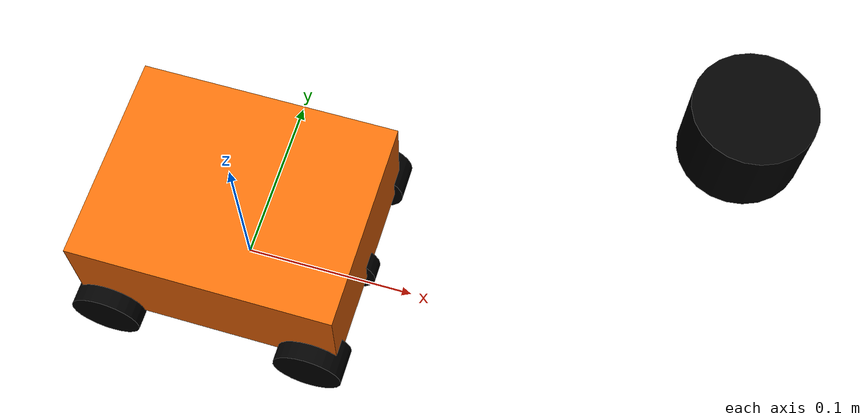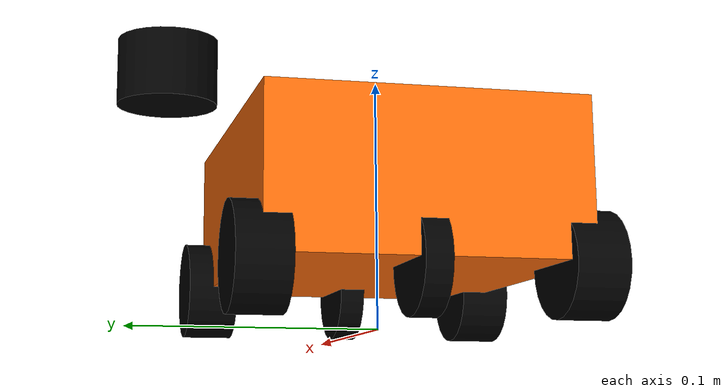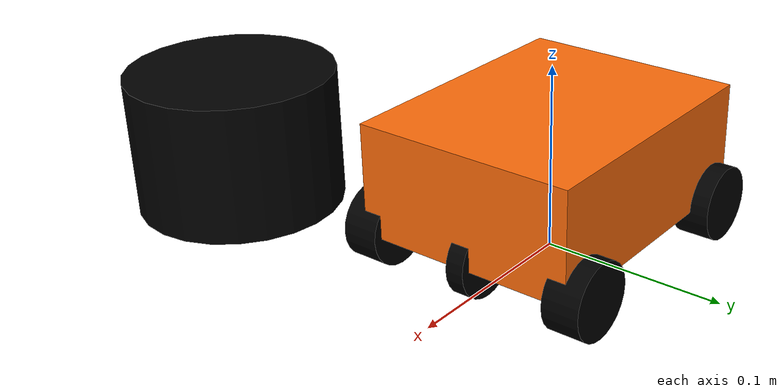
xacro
<?xml version="1.0"?>
<robot xmlns:xacro="http://www.ros.org/wiki/xacro" name="my_robot">

  <xacro:include filename="common_propperties.xacro"/>
  <xacro:include filename="mobile_base.xacro"/>
  <xacro:include filename="mobile_base.ros2_control.xacro"/>

  <!-- instancia el robot -->
  <xacro:carlikebot prefix=""/>

  <!-- instancia el bloque ros2_control -->
  <xacro:carlikebot_ros2_control prefix=""/>

</robot>

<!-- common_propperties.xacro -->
<robot>

  <material name="black">
    <color rgba="0.0 0.0 0.0 1.0"/>
  </material>

  <material name="blue">
    <color rgba="0.0 0.0 0.8 1.0"/>
  </material>

  <material name="green">
    <color rgba="0.0 0.8 0.0 1.0"/>
  </material>

  <material name="grey">
    <color rgba="0.2 0.2 0.2 1.0"/>
  </material>

  <material name="orange">
    <color rgba="${255/255} ${108/255} ${10/255} 1.0"/>
  </material>

  <material name="brown">
    <color rgba="${222/255} ${207/255} ${195/255} 1.0"/>
  </material>

  <material name="red">
    <color rgba="0.8 0.0 0.0 1.0"/>
  </material>

  <material name="white">
    <color rgba="1.0 1.0 1.0 1.0"/>
  </material>

  <material name="invisible">
    <color rgba="0.0 0.0 0.0 0.0"/>
  </material>

</robot>

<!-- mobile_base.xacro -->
<robot xmlns:xacro="http://www.ros.org/wiki/xacro" name="my_robot">

  <xacro:macro name="carlikebot" params="prefix">

  <!-- Constants for robot dimensions -->
  <xacro:property name="PI" value="3.1415926535897931"/>
  <xacro:property name="base_mass" value="4.0" /> <!-- arbitrary value for base mass -->
  <xacro:property name="base_width" value="0.12" />
  <xacro:property name="base_length" value="0.15" />
  <xacro:property name="base_height" value="0.060" />
  <xacro:property name="wheelbase" value="0.12" />
  <xacro:property name="wheel_mass" value="0.34055" /> <!-- arbitrary value for wheel mass -->
  <xacro:property name="wheel_len" value="0.02" />
  <xacro:property name="wheel_radius" value="0.02" />

  <!-- Base Link -->
  <link name="${prefix}base_link" />

  <!-- Chassis -->

  <link name="${prefix}chassis_link">
    <collision>
      <origin xyz="0 0 0" rpy="0 0 0"/>
      <geometry>
        <box size="${base_length} ${base_width} ${base_height}"/>
      </geometry>
    </collision>

    <visual>
      <origin xyz="0 0 0" rpy="0 0 0"/>
      <geometry>
        <box size="${base_length} ${base_width} ${base_height}"/>
      </geometry>
      <material name="orange"/>
    </visual>

    <inertial>
      <origin xyz="0 0 0" rpy="0 0 0"/>
      <mass value="${base_mass}"/>
        <inertia
          ixx="0.000270" ixy="0.0" ixz="0.0"
          iyy="0.000270" iyz="0.0"
          izz="0.000426"/>
      </inertial>
    </link>

    <joint name="${prefix}chassis_joint" type="fixed">
      <parent link="${prefix}base_link"/>
      <child link="${prefix}chassis_link"/>
      <origin xyz="0 0 ${base_height/2 + wheel_radius}" rpy="0 0 0"/>
      <axis xyz="0 0 1"/>
      <dynamics damping="0.2"/>
    </joint>

    <!-- rear wheels -->

    <!-- virtual rear wheel -->

    <link name="${prefix}virtual_rear_wheel">
      <visual>
        <origin xyz="0 0 0" rpy="${PI/2} 0 ${PI/2}"/>
        <geometry>
          <cylinder length="0.01" radius="${wheel_radius}"/>
        </geometry>
        <material name="invisible"/>
      </visual>
    </link>

    <joint name="${prefix}virtual_rear_wheel_joint" type="continuous">
      <parent link="${prefix}chassis_link"/>
      <child link="${prefix}virtual_rear_wheel"/>
      <origin xyz="-${wheelbase/2} 0 -${base_height/2}" rpy="0 0 ${PI/2}"/>
      <axis xyz="1 0 0"/>
      <limit effort="100.0" velocity="100.0"/>
      <dynamics damping="0.2"/>
    </joint>

    <!-- rear right wheel -->

    <link name="${prefix}rear_right_wheel">
      <collision>
        <origin xyz="0 0 0" rpy="${PI/2} 0 ${PI/2}"/>
        <geometry>
          <cylinder length="${wheel_len}" radius="${wheel_radius}"/>
        </geometry>
      </collision>

      <visual>
        <origin xyz="0 0 0" rpy="${PI/2} 0 ${PI/2}"/>
        <geometry>
          <cylinder length="${wheel_len}" radius="${wheel_radius}"/>
        </geometry>
        <material name="black"/>
      </visual>

      <inertial>
        <origin xyz="0 0 0" rpy="${PI/2} 0 ${PI/2}"/>
        <mass value="${wheel_mass}"/>
        <inertia
          ixx="0.000270" ixy="0.0" ixz="0.0"
          iyy="0.000270" iyz="0.0"
          izz="0.000426"/>
      </inertial>

    </link>

    <joint name="${prefix}rear_right_wheel_joint" type="continuous">
      <parent link="${prefix}chassis_link"/>
      <child link="${prefix}rear_right_wheel"/>
      <origin xyz="-${wheelbase/2} ${base_width/2} -${base_height/2}" rpy="0 0 ${PI/2}"/>
      <axis xyz="1 0 0"/>
      <limit effort="100.0" velocity="100.0"/>
      <dynamics damping="0.2"/>
      <mimic joint="${prefix}virtual_rear_wheel_joint" multiplier="1.0" offset="0.0"/>
    </joint>

    <!-- rear left wheel -->
    <link name="${prefix}rear_left_wheel">
        <collision>
          <origin xyz="0 0 0" rpy="${PI/2} 0 ${PI/2}"/>
          <geometry>
            <cylinder length="${wheel_len}" radius="${wheel_radius}"/>
          </geometry>
        </collision>

        <visual>
          <origin xyz="0 0 0" rpy="${PI/2} 0 ${PI/2}"/>
          <geometry>
            <cylinder length="${wheel_len}" radius="${wheel_radius}"/>
          </geometry>
          <material name="black"/>
        </visual>

        <inertial>
          <origin xyz="0 0 0" rpy="${PI/2} 0 ${PI/2}"/>
          <mass value="${wheel_mass}"/>
          <inertia
            ixx="0.000270" ixy="0.0" ixz="0.0"
            iyy="0.000270" iyz="0.0"
            izz="0.000426"/>
        </inertial>

    </link>

    <joint name="${prefix}rear_left_wheel_joint" type="continuous">
      <parent link="${prefix}chassis_link" />
      <child link="${prefix}rear_left_wheel" />
      <origin xyz="-${wheelbase/2} -${base_width/2} -${base_height/2}" rpy="0 0 ${PI/2}"/>
      <axis xyz="1 0 0"/>
      <limit effort="100.0" velocity="100.0"/>
      <dynamics damping="0.2"/>
      <mimic joint="${prefix}virtual_rear_wheel_joint" multiplier="1.0" offset="0.0"/>
    </joint>

    <!-- front wheels -->

    <!-- virtual front wheel -->

    <link name="${prefix}virtual_front_wheel">
      <visual>
        <origin xyz="0 0 0" rpy="${PI/2} 0 ${PI/2}"/>
        <geometry>
          <cylinder length="0.01" radius="${wheel_radius}"/>
        </geometry>
        <material name="invisible"/>
      </visual>
    </link>

    <joint name="${prefix}virtual_front_wheel_joint" type="revolute">
      <parent link="${prefix}chassis_link"/>
      <child link="${prefix}virtual_front_wheel"/>
      <origin xyz="${wheelbase/2} 0 -${base_height/2}" rpy="0 0 ${PI/2}"/>
      <axis xyz="0 0 1"/>
      <limit lower="-0.4" upper="0.4" effort="100.0" velocity="10.0"/>
      <dynamics damping="0.2"/>
    </joint>

    <!-- front right wheel -->

    <link name="${prefix}front_right_wheel">

      <collision>
        <origin xyz="0 0 0" rpy="${PI/2} 0 ${PI/2}"/>
        <geometry>
          <cylinder length="${wheel_len}" radius="${wheel_radius}"/>
        </geometry>
      </collision>

      <visual>
        <origin xyz="0 0 0" rpy="${PI/2} 0 ${PI/2}"/>
        <geometry>
          <cylinder length="${wheel_len}" radius="${wheel_radius}"/>
        </geometry>
        <material name="black"/>
      </visual>

      <inertial>
        <origin xyz="0 0 0" rpy="${PI/2} 0 ${PI/2}"/>
        <mass value="${wheel_mass}"/>
        <inertia
          ixx="0.000270" ixy="0.0" ixz="0.0"
          iyy="0.000270" iyz="0.0"
          izz="0.000426"/>
      </inertial>
    </link>

    <joint name="${prefix}front_right_wheel_joint" type="revolute">
      <parent link="${prefix}chassis_link" />
      <child link="${prefix}front_right_wheel" />
      <origin xyz="${wheelbase/2} ${base_width/2} -${base_height/2}" rpy="0 0 ${PI/2}"/>
      <axis xyz="0 0 1"/>
      <limit lower="-0.4" upper="0.4" effort="100.0" velocity="10.0"/>
      <dynamics damping="0.2"/>
      <mimic joint="${prefix}virtual_front_wheel_joint" multiplier="1.0" offset="0.0"/>
    </joint>

    <!-- front left steering -->

    <link name="${prefix}front_left_wheel">
      <collision>
        <origin xyz="0 0 0" rpy="${PI/2} 0 ${PI/2}"/>
        <geometry>
          <cylinder length="${wheel_len}" radius="${wheel_radius}"/>
        </geometry>
      </collision>

      <visual>
        <origin xyz="0 0 0" rpy="${PI/2} 0 ${PI/2}"/>
        <geometry>
          <cylinder length="${wheel_len}" radius="${wheel_radius}"/>
        </geometry>
        <material name="black"/>
      </visual>

      <inertial>
        <origin xyz="0 0 0" rpy="${PI/2} 0 ${PI/2}"/>
        <mass value="${wheel_mass}"/>
        <inertia
          ixx="0.000270" ixy="0.0" ixz="0.0"
          iyy="0.000270" iyz="0.0"
          izz="0.000426"/>
      </inertial>

    </link>

    <joint name="${prefix}front_left_wheel_joint" type="revolute">
      <parent link="${prefix}chassis_link" />
      <child link="${prefix}front_left_wheel" />
      <origin xyz="${wheelbase/2} -${base_width/2} -${base_height/2}" rpy="0 0 ${PI/2}"/>
      <axis xyz="0 0 1"/>
      <limit lower="-0.4" upper="0.4" effort="100.0" velocity="10.0"/>
      <dynamics damping="0.2"/>
      <mimic joint="${prefix}virtual_front_wheel_joint" multiplier="1.0" offset="0.0"/>
    </joint>

  <!-- LiDAR -->

  <link name="${prefix}laser">
    <visual>
      <geometry>
        <cylinder radius="0.03" length="0.04"/>
      </geometry>
      <material name="black"/>
    </visual>
  </link>

  <joint name="${prefix}laser_joint" type="fixed">
    <parent link="${prefix}base_link"/>
    <child link="${prefix}laser"/>

    <!-- Ajustar según la posición real -->
    <origin xyz="0.25 0.06 0.17"
            rpy="0 0 0"/>
  </joint>
  </xacro:macro>

</robot>
